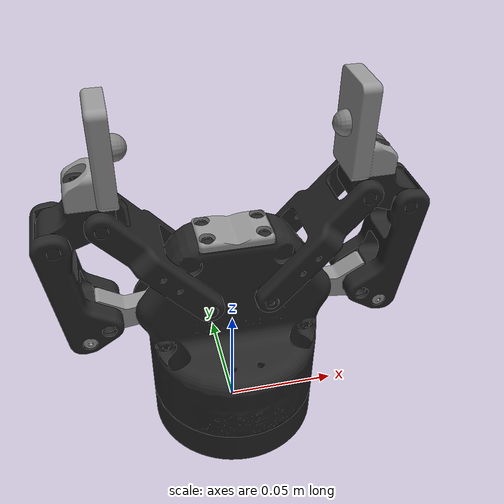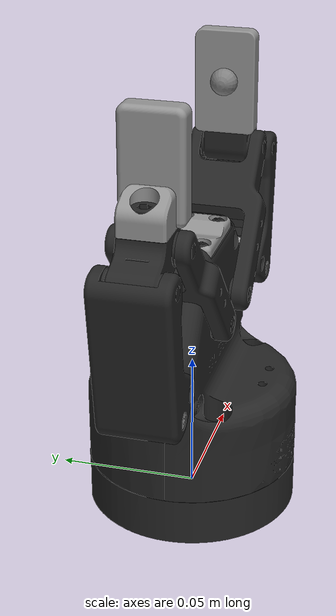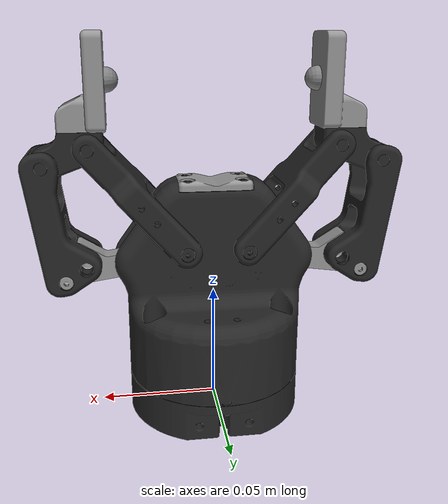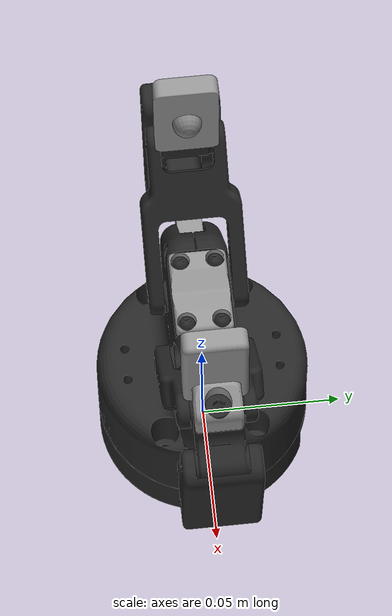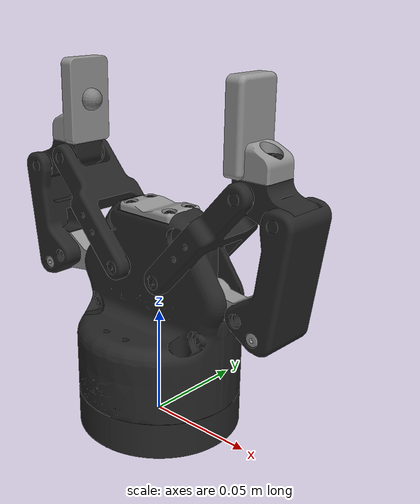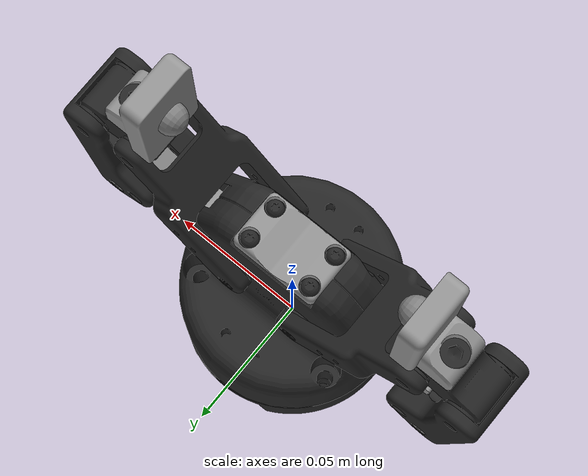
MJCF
<mujoco model="robotiq_2f85">
  <compiler angle="radian" meshdir="assets" autolimits="true"/>

  <option cone="elliptic" impratio="10"/>

  <asset>
    <material name="metal" rgba="0.58 0.58 0.58 1"/>
    <material name="silicone" rgba="0.1882 0.1882 0.1882 1"/>
    <material name="black" rgba="0.149 0.149 0.149 1"/>

    <mesh name="base" file="base.stl"/>
    <mesh name="base_coupling" file="base_coupling.stl"/>
    <mesh name="c-a01-85-open" file="c-a01-85-open.stl"/>
    <mesh name="driver" file="driver.stl"/>
    <mesh name="coupler" file="coupler.stl"/>
    <mesh name="spring_link" file="spring_link.stl"/>
    <mesh name="follower" file="follower.stl"/>
    <mesh name="tongue" file="tongue.stl"/>
  </asset>

  <default>
    <default class="2f85">
      <mesh scale="0.001 0.001 0.001"/>
      <general biastype="affine"/>

      <joint axis="0 0 1"/>
      <default class="driver">
        <joint range="0 0.9" armature="0.005" damping="0.1" solimplimit="0.95 0.99 0.001" solreflimit="0.005 1" limited="true"/>
      </default>
      <default class="follower">
        <joint range="-0.872664 0.9" armature="0.001"  solimplimit="0.95 0.99 0.001" solreflimit="0.005 1" limited="true"/>
      </default>
      <default class="spring_link">
        <joint range="-0.29670597283 0.9" armature="0.001" stiffness="0.05" springref="2.62" damping="0.00125" limited="true"/>
      </default>
      <default class="coupler">
        <joint range="-1.57 0" armature="0.001" solimplimit="0.95 0.99 0.001" solreflimit="0.005 1" limited="true"/>
      </default>

      <default class="visual">
        <geom type="mesh" contype="0" conaffinity="0" group="2" material="black"/>
      </default>
      <default class="collision">
        <geom type="mesh" group="3"/>
        <default class="pad_box1">
          <geom mass="1e-6" type="box" pos="0.043258  0 0.12"  size="0.002 0.011 0.009375" friction="0.7"
            solimp="0.95 0.99 0.001" solref="0.004 1" priority="1" rgba="0.55 0.55 0.55 1"/>
        </default>
        <default class="pad_box2">
          <geom mass="1e-6" type="box" pos="0.043258 0 0.13875" size="0.002 0.011 0.009375" friction="0.6"
            solimp="0.95 0.99 0.001" solref="0.004 1" priority="1" rgba="0.45 0.45 0.45 1"/>
        </default>
      </default>
    </default>
  </default>

  <worldbody>
    <body name="base" childclass="2f85">
      <inertial mass="0.777441" pos="7.77116e-05 8.42713e-05 0.0311656"
        quat="0.704758 -0.00373684 -0.00570287 0.709415"
        diaginertia="0.000260285 0.000225381 0.000152708"/>
      <geom class="visual" pos="0 0 0.0108" quat="0 0 0 1"   mesh="base"/>
      <geom class="visual" pos="0 0 0.004" quat="1 -1 0 0"   mesh="base_coupling"/>
      <geom class="visual" pos="0 0 0.0108" quat="1 0 0 0"  material="metal" mesh="c-a01-85-open"/>
      <geom class="collision" mesh="base"/>
      <!-- Left-hand side 4-bar linkage -->
      <body name="left_driver" pos="-0.0306011 0.00475 0.0657045" quat="1 -1 0 0">
        <inertial mass="0.00899563" pos="-0.0175297 0.00165308 -0.00469625"
            quat="-0.469642 0.469642 -0.528617 0.528617"
            diaginertia="1.72352e-06 1.60906e-06 3.22006e-07"/>
        <joint name="left_driver_joint" class="driver"/>
        <geom class="visual" pos="0.0306011 0.0549045 -0.0047" quat="1 1 0 0"  material="metal" mesh="driver"/>
        <geom class="collision" pos="0.0306011 0.0549045 -0.0047" quat="1 1 0 0"   mesh="driver"/>
        <body name="left_coupler" pos="-0.0314249 0.00453223 -0.0102" quat="0 0 0 1">
          <inertial mass="0.0140974" pos="0.00367747 0.01986 0.0055"
            quat="0.701447 -0.701447 0.0892884 -0.0892884"
            diaginertia="4.16206e-06 3.52216e-06 8.88131e-07"/>
          <geom class="visual" pos="-0.062026 -0.0503723 0.0055" quat="1 -1 0 0"   mesh="coupler"/>
          <geom class="collision" pos="-0.062026 -0.0503723 0.0055" quat="1 -1 0 0"  mesh="coupler"/>
        </body>
      </body>
      <body name="left_spring_link" pos="-0.0127 -0.012 0.07222" quat="1 -1 0 0">
        <inertial mass="0.0221642" pos="-0.0183 -0.0205732 0.01205"
            quat="0.660941 0.660941 -0.251309 -0.251309"
            diaginertia="8.96853e-06 6.71733e-06 2.63931e-06"/>
        <joint name="left_spring_link_joint" class="spring_link"/>
        <geom class="visual" pos="0.0127 0.06142 0.01205" quat="1 1 0 0" type="mesh"  mesh="spring_link"/>
        <geom class="collision" pos="0.0127 0.06142 0.01205" quat="1 1 0 0" type="mesh"  mesh="spring_link"/>
        <body name="left_follower" pos="-0.0382079 -0.0425003 0.00295" quat="0 -1 -1.90231e-05 0">
          <inertial mass="0.0125222" pos="-0.00852976 -0.0014822 -0.00910001"
            quat="0.359439 0.359439 0.608937 0.608937"
            diaginertia="2.67415e-06 2.4559e-06 6.02031e-07"/>
          <joint name="left_follower_joint" class="follower"/>
          <geom class="visual" pos="0.0509079 -0.10392 -0.0091" quat="1 -1 0 0" type="mesh"  mesh="follower"/>
          <geom class="visual" pos="0.0509079 -0.10392 -0.0091" quat="1 -1 0 0" type="mesh" material="metal" mesh="tongue"/>
          <geom class="collision" pos="0.0509079 -0.10392 -0.0091" quat="1 -1 0 0" type="mesh"  mesh="follower"/>
          <geom class="collision" pos="0.0509079 -0.10392 -0.0091" quat="1 -1 0 0" type="mesh"  mesh="tongue"/>
          <site name="left_pad_site" euler="0 1.571 1.571" pos="0.008 0.026 -0.00905"/>
          <body name="left_pad" pos="-0.0377897 -0.103916 -0.0091" quat="1 -1 0 0" >
            <geom class="pad_box1" name="left_pad1"/>
            <geom class="pad_box2" name="left_pad2"/>
          </body>
        </body>
      </body>
      <!-- Right-hand side 4-bar linkage -->
      <body name="right_driver" pos="0.0306011 -0.00475 0.0657045" quat="0 0 -1 1">
        <inertial mass="0.00899563" pos="-0.0175297 0.00165308 -0.00469625"
            quat="-0.469642 0.469642 -0.528617 0.528617"
            diaginertia="1.72352e-06 1.60906e-06 3.22006e-07"/>
        <joint name="right_driver_joint" class="driver"/>
        <geom class="visual" pos="0.0306011 0.0549045 -0.0047" quat="1 1 0 0" material="metal" mesh="driver"/>
        <geom class="collision" pos="0.0306011 0.0549045 -0.0047" quat="1 1 0 0"  mesh="driver"/>
        <body name="right_coupler" pos="-0.0314249 0.00453223 -0.0102" quat="0 0 0 1">
          <inertial mass="0.0140974" pos="0.00367747 0.01986 0.0055"
            quat="0.701447 -0.701447 0.0892884 -0.0892884"
            diaginertia="4.16206e-06 3.52216e-06 8.88131e-07"/>
          <geom class="visual" pos="-0.062026 -0.0503723 0.0055" quat="1 -1 0 0"   mesh="coupler"/>
          <geom class="collision" pos="-0.062026 -0.0503723 0.0055" quat="1 -1 0 0"   mesh="coupler"/>
        </body>
      </body>
      <body name="right_spring_link" pos="0.0127 0.012 0.07222" quat="0 0 -1 1">
        <inertial mass="0.0221642" pos="-0.0183 -0.0205732 0.01205"
            quat="0.660941 0.660941 -0.251309 -0.251309"
            diaginertia="8.96853e-06 6.71733e-06 2.63931e-06"/>
        <joint name="right_spring_link_joint" class="spring_link"/>
        <geom class="visual" pos="0.0127 0.06142 0.01205" quat="1 1 0 0"   mesh="spring_link"/>
        <geom class="collision" pos="0.0127 0.06142 0.01205" quat="1 1 0 0"   mesh="spring_link"/>
        <body name="right_follower" pos="-0.0382079 -0.0425003 0.00295" quat="0 -1 0 0">
          <inertial mass="0.0125222" pos="-0.00852976 -0.0014822 -0.00910001"
            quat="0.359439 0.359439 0.608937 0.608937"
            diaginertia="2.67415e-06 2.4559e-06 6.02031e-07"/>
          <joint name="right_follower_joint" class="follower"/>
          <geom class="visual" pos="0.0509079 -0.10392 -0.0091" quat="1 -1 0 0"  material="metal" mesh="tongue"/>
          <geom class="visual" pos="0.0509079 -0.10392 -0.0091" quat="1 -1 0 0"   mesh="follower"/>
          <geom class="collision" pos="0.0509079 -0.10392 -0.0091" quat="1 -1 0 0"   mesh="tongue"/>
          <geom class="collision" pos="0.0509079 -0.10392 -0.0091" quat="1 -1 0 0"   mesh="follower"/>
          <site name="right_pad_site" euler="0 1.571 1.571" pos="0.008 0.026 -0.00905"/>
          <body name="right_pad" pos="-0.0377897 -0.103916 -0.0091"   quat="1 -1 0 0" >
            <geom class="pad_box1" name="right_pad1"/>
            <geom class="pad_box2" name="right_pad2"/>
          </body>
        </body>
      </body>
    </body>
  </worldbody>

  <contact>
    <exclude body1="base" body2="left_driver"/>
    <exclude body1="base" body2="right_driver"/>
    <exclude body1="base" body2="left_spring_link"/>
    <exclude body1="base" body2="right_spring_link"/>
    <exclude body1="right_coupler" body2="right_follower"/>
    <exclude body1="left_coupler" body2="left_follower"/>
  </contact>

  <tendon>
    <fixed name="split">
      <joint joint="right_driver_joint" coef="0.485"/>
      <joint joint="left_driver_joint" coef="0.485"/>
    </fixed>
  </tendon>

  <equality>
    <connect anchor="-0.0179014 -0.00651468 0.0044" body1="right_follower" body2="right_coupler" solimp="0.95 0.99 0.001" solref="0.005 1"/>
    <connect anchor="-0.0179014 -0.00651468 0.0044" body1="left_follower" body2="left_coupler" solimp="0.95 0.99 0.001" solref="0.005 1"/>
    <joint joint1="right_driver_joint" joint2="left_driver_joint" polycoef="0 1 0 0 0" solimp="0.95 0.99 0.001" solref="0.005 1"/>
  </equality>

  <actuator>
    <general class="2f85" name="fingers_actuator" tendon="split" forcerange="-100 100" ctrlrange="0 255"
      gainprm="0.3137255 0 0" biasprm="0 -100 -10"/>
  </actuator>
</mujoco>
